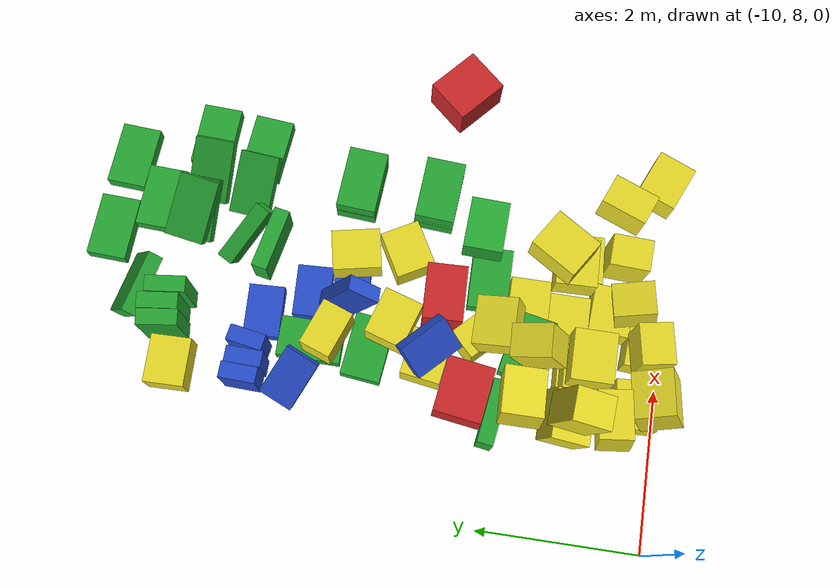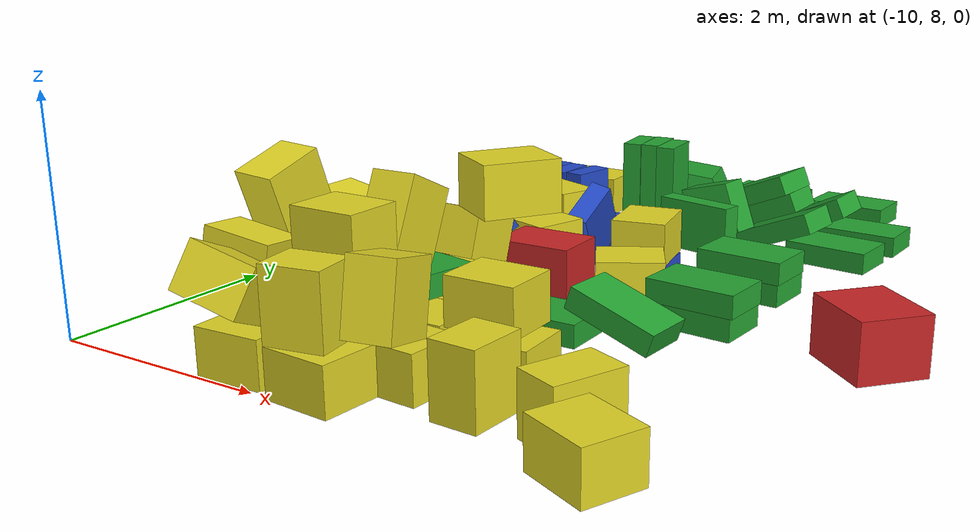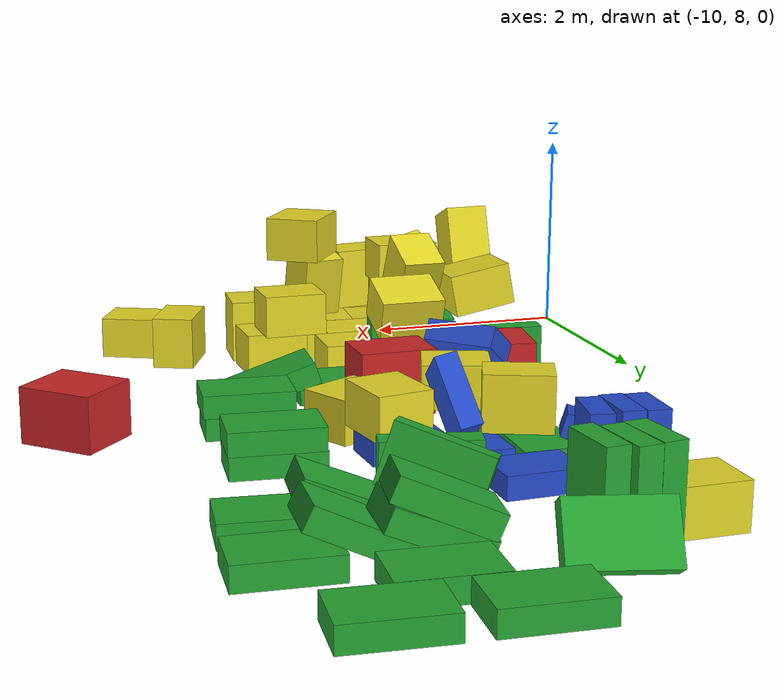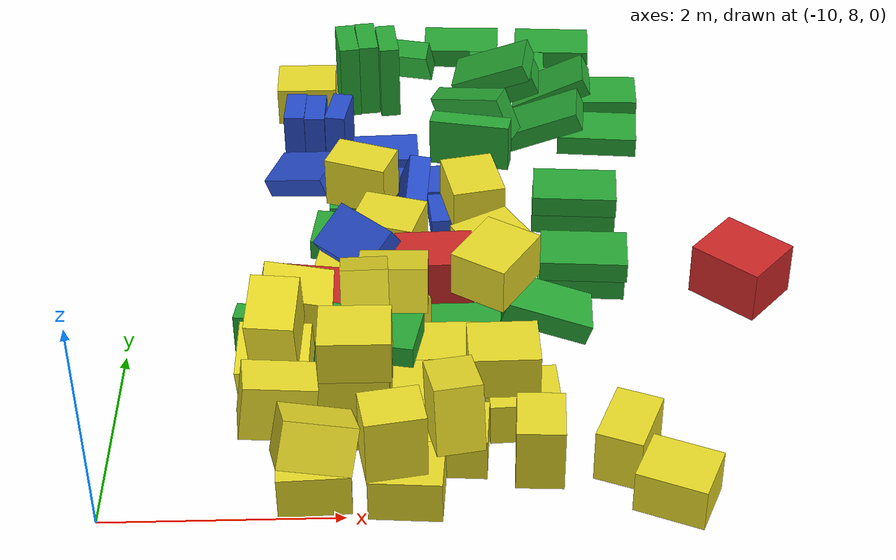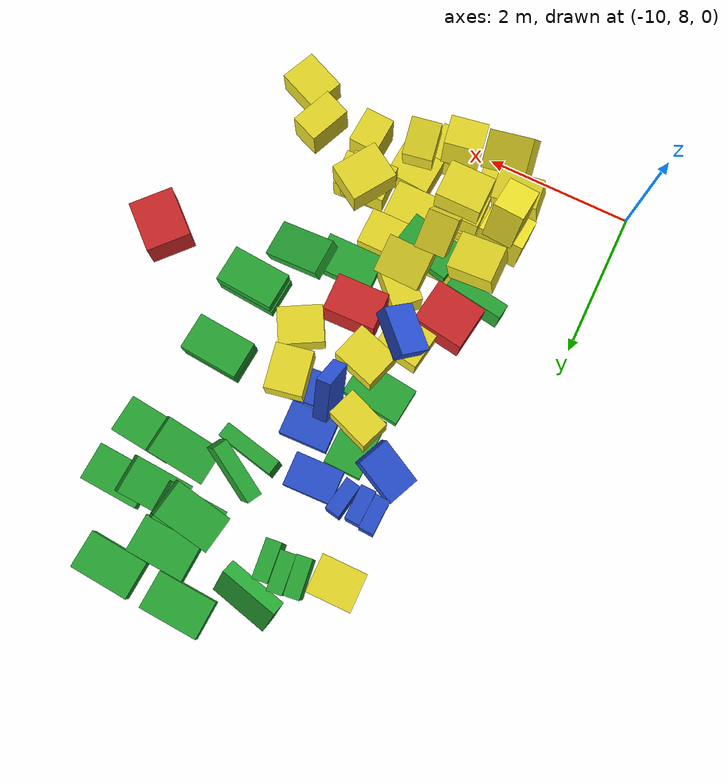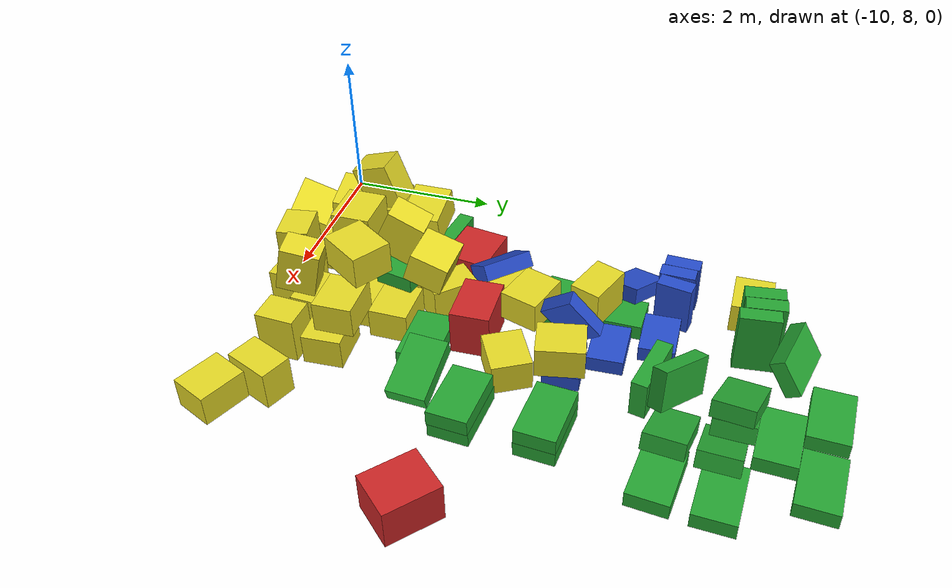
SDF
<sdf version="1.6">
 <world name="default">
  <model name="baggage_A_clone_33">
   <static>0</static>
   <link name="link">
    <collision name="collision"><geometry><box><size>0.7 0.6 0.5</size></box></geometry></collision>
    <visual name="visual">
     <geometry><box><size>0.7 0.6 0.5</size></box></geometry>
     <material>
      <script><uri>file://media/materials/scripts/gazebo.material</uri><name>Gazebo/Red</name></script>
     </material>
    </visual>
    <inertial>
     <inertia><ixx>1</ixx><ixy>0</ixy><ixz>0</ixz><iyy>1</iyy><iyz>0</iyz><izz>1</izz></inertia>
     <mass>1</mass>
    </inertial>
   </link>
   <pose>-4.44286 10.8346 0.25 -3.14159 0 2.41474</pose>
  </model>
  <model name="baggage_A_clone_34">
   <static>0</static>
   <link name="link">
    <collision name="collision"><geometry><box><size>0.7 0.6 0.5</size></box></geometry></collision>
    <visual name="visual">
     <geometry><box><size>0.7 0.6 0.5</size></box></geometry>
     <material>
      <script><uri>file://media/materials/scripts/gazebo.material</uri><name>Gazebo/Red</name></script>
     </material>
    </visual>
    <inertial>
     <inertia><ixx>1</ixx><ixy>0</ixy><ixz>0</ixz><iyy>1</iyy><iyz>0</iyz><izz>1</izz></inertia>
     <mass>1</mass>
    </inertial>
   </link>
   <pose>-7.26088 10.7505 0.300501 -1.56895 0.000115 0.029746</pose>
  </model>
  <model name="baggage_A_clone_35">
   <static>0</static>
   <link name="link">
    <collision name="collision"><geometry><box><size>0.7 0.6 0.5</size></box></geometry></collision>
    <visual name="visual">
     <geometry><box><size>0.7 0.6 0.5</size></box></geometry>
     <material>
      <script><uri>file://media/materials/scripts/gazebo.material</uri><name>Gazebo/Red</name></script>
     </material>
    </visual>
    <inertial>
     <inertia><ixx>1</ixx><ixy>0</ixy><ixz>0</ixz><iyy>1</iyy><iyz>0</iyz><izz>1</izz></inertia>
     <mass>1</mass>
    </inertial>
   </link>
   <pose>-8.3989 10.3578 0.249699 7.1e-05 -6.4e-05 -0.1457</pose>
  </model>
  <model name="baggage_B_clone_17">
   <static>0</static>
   <link name="link">
    <collision name="collision"><geometry><box><size>0.65 0.45 0.2</size></box></geometry></collision>
    <visual name="visual">
     <geometry><box><size>0.65 0.45 0.2</size></box></geometry>
     <material>
      <script><uri>file://media/materials/scripts/gazebo.material</uri><name>Gazebo/Blue</name></script>
     </material>
    </visual>
    <inertial>
     <inertia><ixx>1</ixx><ixy>0</ixy><ixz>0</ixz><iyy>1</iyy><iyz>0</iyz><izz>1</izz></inertia>
     <mass>1</mass>
    </inertial>
   </link>
   <pose>-8.62101 13.0639 0.324991 2.66408 1.57079 2.62988</pose>
  </model>
  <model name="baggage_B_clone_18">
   <static>0</static>
   <link name="link">
    <collision name="collision"><geometry><box><size>0.65 0.45 0.2</size></box></geometry></collision>
    <visual name="visual">
     <geometry><box><size>0.65 0.45 0.2</size></box></geometry>
     <material>
      <script><uri>file://media/materials/scripts/gazebo.material</uri><name>Gazebo/Blue</name></script>
     </material>
    </visual>
    <inertial>
     <inertia><ixx>1</ixx><ixy>0</ixy><ixz>0</ixz><iyy>1</iyy><iyz>0</iyz><izz>1</izz></inertia>
     <mass>1</mass>
    </inertial>
   </link>
   <pose>-8.18769 13.0469 0.325001 2.75544 1.57079 2.58238</pose>
  </model>
  <model name="baggage_B_clone_19">
   <static>0</static>
   <link name="link">
    <collision name="collision"><geometry><box><size>0.65 0.45 0.2</size></box></geometry></collision>
    <visual name="visual">
     <geometry><box><size>0.65 0.45 0.2</size></box></geometry>
     <material>
      <script><uri>file://media/materials/scripts/gazebo.material</uri><name>Gazebo/Blue</name></script>
     </material>
    </visual>
    <inertial>
     <inertia><ixx>1</ixx><ixy>0</ixy><ixz>0</ixz><iyy>1</iyy><iyz>0</iyz><izz>1</izz></inertia>
     <mass>1</mass>
    </inertial>
   </link>
   <pose>-8.42021 13.0349 0.324953 2.67903 1.57079 2.65224</pose>
  </model>
  <model name="baggage_B_clone_36">
   <static>0</static>
   <link name="link">
    <collision name="collision"><geometry><box><size>0.65 0.45 0.2</size></box></geometry></collision>
    <visual name="visual">
     <geometry><box><size>0.65 0.45 0.2</size></box></geometry>
     <material>
      <script><uri>file://media/materials/scripts/gazebo.material</uri><name>Gazebo/Blue</name></script>
     </material>
    </visual>
    <inertial>
     <inertia><ixx>1</ixx><ixy>0</ixy><ixz>0</ixz><iyy>1</iyy><iyz>0</iyz><izz>1</izz></inertia>
     <mass>1</mass>
    </inertial>
   </link>
   <pose>-8.51987 12.4946 0.217841 -3.00866 -0.293193 -0.446394</pose>
  </model>
  <model name="baggage_B_clone_37">
   <static>0</static>
   <link name="link">
    <collision name="collision"><geometry><box><size>0.65 0.45 0.2</size></box></geometry></collision>
    <visual name="visual">
     <geometry><box><size>0.65 0.45 0.2</size></box></geometry>
     <material>
      <script><uri>file://media/materials/scripts/gazebo.material</uri><name>Gazebo/Blue</name></script>
     </material>
    </visual>
    <inertial>
     <inertia><ixx>1</ixx><ixy>0</ixy><ixz>0</ixz><iyy>1</iyy><iyz>0</iyz><izz>1</izz></inertia>
     <mass>1</mass>
    </inertial>
   </link>
   <pose>-7.72951 12.9603 0.099887 -1e-06 2e-06 0.040844</pose>
  </model>
  <model name="baggage_B_clone_38">
   <static>0</static>
   <link name="link">
    <collision name="collision"><geometry><box><size>0.65 0.45 0.2</size></box></geometry></collision>
    <visual name="visual">
     <geometry><box><size>0.65 0.45 0.2</size></box></geometry>
     <material>
      <script><uri>file://media/materials/scripts/gazebo.material</uri><name>Gazebo/Blue</name></script>
     </material>
    </visual>
    <inertial>
     <inertia><ixx>1</ixx><ixy>0</ixy><ixz>0</ixz><iyy>1</iyy><iyz>0</iyz><izz>1</izz></inertia>
     <mass>1</mass>
    </inertial>
   </link>
   <pose>-7.38911 12.3948 0.099965 1e-06 -2e-06 0.041765</pose>
  </model>
  <model name="baggage_B_clone_39">
   <static>0</static>
   <link name="link">
    <collision name="collision"><geometry><box><size>0.65 0.45 0.2</size></box></geometry></collision>
    <visual name="visual">
     <geometry><box><size>0.65 0.45 0.2</size></box></geometry>
     <material>
      <script><uri>file://media/materials/scripts/gazebo.material</uri><name>Gazebo/Blue</name></script>
     </material>
    </visual>
    <inertial>
     <inertia><ixx>1</ixx><ixy>0</ixy><ixz>0</ixz><iyy>1</iyy><iyz>0</iyz><izz>1</izz></inertia>
     <mass>1</mass>
    </inertial>
   </link>
   <pose>-7.44991 11.9089 0.429279 1.23187 -0.923101 -1.29265</pose>
  </model>
  <model name="baggage_B_clone_40">
   <static>0</static>
   <link name="link">
    <collision name="collision"><geometry><box><size>0.65 0.45 0.2</size></box></geometry></collision>
    <visual name="visual">
     <geometry><box><size>0.65 0.45 0.2</size></box></geometry>
     <material>
      <script><uri>file://media/materials/scripts/gazebo.material</uri><name>Gazebo/Blue</name></script>
     </material>
    </visual>
    <inertial>
     <inertia><ixx>1</ixx><ixy>0</ixy><ixz>0</ixz><iyy>1</iyy><iyz>0</iyz><izz>1</izz></inertia>
     <mass>1</mass>
    </inertial>
   </link>
   <pose>-6.9735 11.9405 0.09986 2.4e-05 3.6e-05 0.08277</pose>
  </model>
  <model name="baggage_B_clone_43">
   <static>0</static>
   <link name="link">
    <collision name="collision"><geometry><box><size>0.65 0.45 0.2</size></box></geometry></collision>
    <visual name="visual">
     <geometry><box><size>0.65 0.45 0.2</size></box></geometry>
     <material>
      <script><uri>file://media/materials/scripts/gazebo.material</uri><name>Gazebo/Blue</name></script>
     </material>
    </visual>
    <inertial>
     <inertia><ixx>1</ixx><ixy>0</ixy><ixz>0</ixz><iyy>1</iyy><iyz>0</iyz><izz>1</izz></inertia>
     <mass>1</mass>
    </inertial>
   </link>
   <pose>-7.96244 10.8533 0.608022 -0.582982 0.000103 2.36132</pose>
  </model>
  <model name="baggage_C_clone_20">
   <static>0</static>
   <link name="link">
    <collision name="collision"><geometry><box><size>0.6 0.5 0.4</size></box></geometry></collision>
    <visual name="visual">
     <geometry><box><size>0.6 0.5 0.4</size></box></geometry>
     <material>
      <script><uri>file://media/materials/scripts/gazebo.material</uri><name>Gazebo/Yellow</name></script>
     </material>
    </visual>
    <inertial>
     <inertia><ixx>1</ixx><ixy>0</ixy><ixz>0</ixz><iyy>1</iyy><iyz>0</iyz><izz>1</izz></inertia>
     <mass>1</mass>
    </inertial>
   </link>
   <pose>-8.55814 13.9873 0.199909 -1e-06 -2e-06 0.014585</pose>
  </model>
  <model name="baggage_D_clone_17">
   <static>0</static>
   <link name="link">
    <collision name="collision"><geometry><box><size>0.8 0.5 0.2</size></box></geometry></collision>
    <visual name="visual">
     <geometry><box><size>0.8 0.5 0.2</size></box></geometry>
     <material>
      <script><uri>file://media/materials/scripts/gazebo.material</uri><name>Gazebo/Green</name></script>
     </material>
    </visual>
    <inertial>
     <inertia><ixx>1</ixx><ixy>0</ixy><ixz>0</ixz><iyy>1</iyy><iyz>0</iyz><izz>1</izz></inertia>
     <mass>1</mass>
    </inertial>
   </link>
   <pose>-5.4958 14.0008 0.099983 -1e-06 -3e-06 -0.04714</pose>
  </model>
  <model name="baggage_D_clone_18">
   <static>0</static>
   <link name="link">
    <collision name="collision"><geometry><box><size>0.8 0.5 0.2</size></box></geometry></collision>
    <visual name="visual">
     <geometry><box><size>0.8 0.5 0.2</size></box></geometry>
     <material>
      <script><uri>file://media/materials/scripts/gazebo.material</uri><name>Gazebo/Green</name></script>
     </material>
    </visual>
    <inertial>
     <inertia><ixx>1</ixx><ixy>0</ixy><ixz>0</ixz><iyy>1</iyy><iyz>0</iyz><izz>1</izz></inertia>
     <mass>1</mass>
    </inertial>
   </link>
   <pose>-5.92566 15.0098 0.099998 -2e-06 3e-06 -0.064373</pose>
  </model>
  <model name="baggage_D_clone_19">
   <static>0</static>
   <link name="link">
    <collision name="collision"><geometry><box><size>0.8 0.5 0.2</size></box></geometry></collision>
    <visual name="visual">
     <geometry><box><size>0.8 0.5 0.2</size></box></geometry>
     <material>
      <script><uri>file://media/materials/scripts/gazebo.material</uri><name>Gazebo/Green</name></script>
     </material>
    </visual>
    <inertial>
     <inertia><ixx>1</ixx><ixy>0</ixy><ixz>0</ixz><iyy>1</iyy><iyz>0</iyz><izz>1</izz></inertia>
     <mass>1</mass>
    </inertial>
   </link>
   <pose>-6.91643 15.0654 0.1 0 0 -0.04641</pose>
  </model>
  <model name="baggage_D_clone_20">
   <static>0</static>
   <link name="link">
    <collision name="collision"><geometry><box><size>0.8 0.5 0.2</size></box></geometry></collision>
    <visual name="visual">
     <geometry><box><size>0.8 0.5 0.2</size></box></geometry>
     <material>
      <script><uri>file://media/materials/scripts/gazebo.material</uri><name>Gazebo/Green</name></script>
     </material>
    </visual>
    <inertial>
     <inertia><ixx>1</ixx><ixy>0</ixy><ixz>0</ixz><iyy>1</iyy><iyz>0</iyz><izz>1</izz></inertia>
     <mass>1</mass>
    </inertial>
   </link>
   <pose>-6.43937 14.5349 0.1 0 0 -0.048464</pose>
  </model>
  <model name="baggage_D_clone_21">
   <static>0</static>
   <link name="link">
    <collision name="collision"><geometry><box><size>0.8 0.5 0.2</size></box></geometry></collision>
    <visual name="visual">
     <geometry><box><size>0.8 0.5 0.2</size></box></geometry>
     <material>
      <script><uri>file://media/materials/scripts/gazebo.material</uri><name>Gazebo/Green</name></script>
     </material>
    </visual>
    <inertial>
     <inertia><ixx>1</ixx><ixy>0</ixy><ixz>0</ixz><iyy>1</iyy><iyz>0</iyz><izz>1</izz></inertia>
     <mass>1</mass>
    </inertial>
   </link>
   <pose>-5.99798 13.9431 0.263382 -1.1e-05 -0.447948 -0.047116</pose>
  </model>
  <model name="baggage_D_clone_22">
   <static>0</static>
   <link name="link">
    <collision name="collision"><geometry><box><size>0.8 0.5 0.2</size></box></geometry></collision>
    <visual name="visual">
     <geometry><box><size>0.8 0.5 0.2</size></box></geometry>
     <material>
      <script><uri>file://media/materials/scripts/gazebo.material</uri><name>Gazebo/Green</name></script>
     </material>
    </visual>
    <inertial>
     <inertia><ixx>1</ixx><ixy>0</ixy><ixz>0</ixz><iyy>1</iyy><iyz>0</iyz><izz>1</izz></inertia>
     <mass>1</mass>
    </inertial>
   </link>
   <pose>-6.53275 14.0379 0.247739 3e-06 -0.39965 -0.047143</pose>
  </model>
  <model name="baggage_D_clone_23">
   <static>0</static>
   <link name="link">
    <collision name="collision"><geometry><box><size>0.8 0.5 0.2</size></box></geometry></collision>
    <visual name="visual">
     <geometry><box><size>0.8 0.5 0.2</size></box></geometry>
     <material>
      <script><uri>file://media/materials/scripts/gazebo.material</uri><name>Gazebo/Green</name></script>
     </material>
    </visual>
    <inertial>
     <inertia><ixx>1</ixx><ixy>0</ixy><ixz>0</ixz><iyy>1</iyy><iyz>0</iyz><izz>1</izz></inertia>
     <mass>1</mass>
    </inertial>
   </link>
   <pose>-8.12959 14.1199 0.399991 1.77545 -1.57079 -1.64137</pose>
  </model>
  <model name="baggage_D_clone_24">
   <static>0</static>
   <link name="link">
    <collision name="collision"><geometry><box><size>0.8 0.5 0.2</size></box></geometry></collision>
    <visual name="visual">
     <geometry><box><size>0.8 0.5 0.2</size></box></geometry>
     <material>
      <script><uri>file://media/materials/scripts/gazebo.material</uri><name>Gazebo/Green</name></script>
     </material>
    </visual>
    <inertial>
     <inertia><ixx>1</ixx><ixy>0</ixy><ixz>0</ixz><iyy>1</iyy><iyz>0</iyz><izz>1</izz></inertia>
     <mass>1</mass>
    </inertial>
   </link>
   <pose>-7.9277 14.1574 0.399997 1.86926 -1.57079 -1.75455</pose>
  </model>
  <model name="baggage_D_clone_25">
   <static>0</static>
   <link name="link">
    <collision name="collision"><geometry><box><size>0.8 0.5 0.2</size></box></geometry></collision>
    <visual name="visual">
     <geometry><box><size>0.8 0.5 0.2</size></box></geometry>
     <material>
      <script><uri>file://media/materials/scripts/gazebo.material</uri><name>Gazebo/Green</name></script>
     </material>
    </visual>
    <inertial>
     <inertia><ixx>1</ixx><ixy>0</ixy><ixz>0</ixz><iyy>1</iyy><iyz>0</iyz><izz>1</izz></inertia>
     <mass>1</mass>
    </inertial>
   </link>
   <pose>-7.71257 14.1074 0.399991 -2.28128 -1.57079 2.39186</pose>
  </model>
  <model name="baggage_D_clone_26">
   <static>0</static>
   <link name="link">
    <collision name="collision"><geometry><box><size>0.8 0.5 0.2</size></box></geometry></collision>
    <visual name="visual">
     <geometry><box><size>0.8 0.5 0.2</size></box></geometry>
     <material>
      <script><uri>file://media/materials/scripts/gazebo.material</uri><name>Gazebo/Green</name></script>
     </material>
    </visual>
    <inertial>
     <inertia><ixx>1</ixx><ixy>0</ixy><ixz>0</ixz><iyy>1</iyy><iyz>0</iyz><izz>1</izz></inertia>
     <mass>1</mass>
    </inertial>
   </link>
   <pose>-8.00843 12.3218 0.099823 -3.14157 -2.3e-05 -1.58044</pose>
  </model>
  <model name="baggage_D_clone_28">
   <static>0</static>
   <link name="link">
    <collision name="collision"><geometry><box><size>0.8 0.5 0.2</size></box></geometry></collision>
    <visual name="visual">
     <geometry><box><size>0.8 0.5 0.2</size></box></geometry>
     <material>
      <script><uri>file://media/materials/scripts/gazebo.material</uri><name>Gazebo/Green</name></script>
     </material>
    </visual>
    <inertial>
     <inertia><ixx>1</ixx><ixy>0</ixy><ixz>0</ixz><iyy>1</iyy><iyz>0</iyz><izz>1</izz></inertia>
     <mass>1</mass>
    </inertial>
   </link>
   <pose>-7.64994 14.5941 0.264417 1.00038 -0 2.91332</pose>
  </model>
  <model name="baggage_D_clone_29">
   <static>0</static>
   <link name="link">
    <collision name="collision"><geometry><box><size>0.8 0.5 0.2</size></box></geometry></collision>
    <visual name="visual">
     <geometry><box><size>0.8 0.5 0.2</size></box></geometry>
     <material>
      <script><uri>file://media/materials/scripts/gazebo.material</uri><name>Gazebo/Green</name></script>
     </material>
    </visual>
    <inertial>
     <inertia><ixx>1</ixx><ixy>0</ixy><ixz>0</ixz><iyy>1</iyy><iyz>0</iyz><izz>1</izz></inertia>
     <mass>1</mass>
    </inertial>
   </link>
   <pose>-5.55772 13.314 0.099907 1e-06 -1e-06 -0.095381</pose>
  </model>
  <model name="baggage_D_clone_30">
   <static>0</static>
   <link name="link">
    <collision name="collision"><geometry><box><size>0.8 0.5 0.2</size></box></geometry></collision>
    <visual name="visual">
     <geometry><box><size>0.8 0.5 0.2</size></box></geometry>
     <material>
      <script><uri>file://media/materials/scripts/gazebo.material</uri><name>Gazebo/Green</name></script>
     </material>
    </visual>
    <inertial>
     <inertia><ixx>1</ixx><ixy>0</ixy><ixz>0</ixz><iyy>1</iyy><iyz>0</iyz><izz>1</izz></inertia>
     <mass>1</mass>
    </inertial>
   </link>
   <pose>-6.11159 13.3587 0.244198 0 -0.388954 -0.095293</pose>
  </model>
  <model name="baggage_D_clone_31">
   <static>0</static>
   <link name="link">
    <collision name="collision"><geometry><box><size>0.8 0.5 0.2</size></box></geometry></collision>
    <visual name="visual">
     <geometry><box><size>0.8 0.5 0.2</size></box></geometry>
     <material>
      <script><uri>file://media/materials/scripts/gazebo.material</uri><name>Gazebo/Green</name></script>
     </material>
    </visual>
    <inertial>
     <inertia><ixx>1</ixx><ixy>0</ixy><ixz>0</ixz><iyy>1</iyy><iyz>0</iyz><izz>1</izz></inertia>
     <mass>1</mass>
    </inertial>
   </link>
   <pose>-8.00249 11.6014 0.104224 -0.001512 0.002406 -0.112418</pose>
  </model>
  <model name="baggage_D_clone_32">
   <static>0</static>
   <link name="link">
    <collision name="collision"><geometry><box><size>0.8 0.5 0.2</size></box></geometry></collision>
    <visual name="visual">
     <geometry><box><size>0.8 0.5 0.2</size></box></geometry>
     <material>
      <script><uri>file://media/materials/scripts/gazebo.material</uri><name>Gazebo/Green</name></script>
     </material>
    </visual>
    <inertial>
     <inertia><ixx>1</ixx><ixy>0</ixy><ixz>0</ixz><iyy>1</iyy><iyz>0</iyz><izz>1</izz></inertia>
     <mass>1</mass>
    </inertial>
   </link>
   <pose>-7.8003 9.6723 0.500855 -0.000531 -0.000668 -0.199382</pose>
  </model>
  <model name="baggage_D_clone_33">
   <static>0</static>
   <link name="link">
    <collision name="collision"><geometry><box><size>0.8 0.5 0.2</size></box></geometry></collision>
    <visual name="visual">
     <geometry><box><size>0.8 0.5 0.2</size></box></geometry>
     <material>
      <script><uri>file://media/materials/scripts/gazebo.material</uri><name>Gazebo/Green</name></script>
     </material>
    </visual>
    <inertial>
     <inertia><ixx>1</ixx><ixy>0</ixy><ixz>0</ixz><iyy>1</iyy><iyz>0</iyz><izz>1</izz></inertia>
     <mass>1</mass>
    </inertial>
   </link>
   <pose>-8.61481 9.97775 0.25031 1.57053 0.000145 -0.143739</pose>
  </model>
  <model name="baggage_D_clone_36">
   <static>0</static>
   <link name="link">
    <collision name="collision"><geometry><box><size>0.8 0.5 0.2</size></box></geometry></collision>
    <visual name="visual">
     <geometry><box><size>0.8 0.5 0.2</size></box></geometry>
     <material>
      <script><uri>file://media/materials/scripts/gazebo.material</uri><name>Gazebo/Green</name></script>
     </material>
    </visual>
    <inertial>
     <inertia><ixx>1</ixx><ixy>0</ixy><ixz>0</ixz><iyy>1</iyy><iyz>0</iyz><izz>1</izz></inertia>
     <mass>1</mass>
    </inertial>
   </link>
   <pose>-6.87032 12.9999 0.249971 1.5708 -0 -0.20135</pose>
  </model>
  <model name="baggage_D_clone_37">
   <static>0</static>
   <link name="link">
    <collision name="collision"><geometry><box><size>0.8 0.5 0.2</size></box></geometry></collision>
    <visual name="visual">
     <geometry><box><size>0.8 0.5 0.2</size></box></geometry>
     <material>
      <script><uri>file://media/materials/scripts/gazebo.material</uri><name>Gazebo/Green</name></script>
     </material>
    </visual>
    <inertial>
     <inertia><ixx>1</ixx><ixy>0</ixy><ixz>0</ixz><iyy>1</iyy><iyz>0</iyz><izz>1</izz></inertia>
     <mass>1</mass>
    </inertial>
   </link>
   <pose>-6.81119 13.3202 0.365895 1.73639 -0.288166 -0.544003</pose>
  </model>
  <model name="baggage_D_clone_39">
   <static>0</static>
   <link name="link">
    <collision name="collision"><geometry><box><size>0.8 0.5 0.2</size></box></geometry></collision>
    <visual name="visual">
     <geometry><box><size>0.8 0.5 0.2</size></box></geometry>
     <material>
      <script><uri>file://media/materials/scripts/gazebo.material</uri><name>Gazebo/Green</name></script>
     </material>
    </visual>
    <inertial>
     <inertia><ixx>1</ixx><ixy>0</ixy><ixz>0</ixz><iyy>1</iyy><iyz>0</iyz><izz>1</izz></inertia>
     <mass>1</mass>
    </inertial>
   </link>
   <pose>-6.60436 14.044 0.434496 0.051063 -0.396552 -0.178694</pose>
  </model>
  <model name="baggage_D_clone_40">
   <static>0</static>
   <link name="link">
    <collision name="collision"><geometry><box><size>0.8 0.5 0.2</size></box></geometry></collision>
    <visual name="visual">
     <geometry><box><size>0.8 0.5 0.2</size></box></geometry>
     <material>
      <script><uri>file://media/materials/scripts/gazebo.material</uri><name>Gazebo/Green</name></script>
     </material>
    </visual>
    <inertial>
     <inertia><ixx>1</ixx><ixy>0</ixy><ixz>0</ixz><iyy>1</iyy><iyz>0</iyz><izz>1</izz></inertia>
     <mass>1</mass>
    </inertial>
   </link>
   <pose>-6.89671 10.2039 0.1 0 -0 0.006587</pose>
  </model>
  <model name="baggage_D_clone_41">
   <static>0</static>
   <link name="link">
    <collision name="collision"><geometry><box><size>0.8 0.5 0.2</size></box></geometry></collision>
    <visual name="visual">
     <geometry><box><size>0.8 0.5 0.2</size></box></geometry>
     <material>
      <script><uri>file://media/materials/scripts/gazebo.material</uri><name>Gazebo/Green</name></script>
     </material>
    </visual>
    <inertial>
     <inertia><ixx>1</ixx><ixy>0</ixy><ixz>0</ixz><iyy>1</iyy><iyz>0</iyz><izz>1</izz></inertia>
     <mass>1</mass>
    </inertial>
   </link>
   <pose>-6.26006 10.34 0.226034 -0.018799 0.322322 -0.053474</pose>
  </model>
  <model name="baggage_D_clone_42">
   <static>0</static>
   <link name="link">
    <collision name="collision"><geometry><box><size>0.8 0.5 0.2</size></box></geometry></collision>
    <visual name="visual">
     <geometry><box><size>0.8 0.5 0.2</size></box></geometry>
     <material>
      <script><uri>file://media/materials/scripts/gazebo.material</uri><name>Gazebo/Green</name></script>
     </material>
    </visual>
    <inertial>
     <inertia><ixx>1</ixx><ixy>0</ixy><ixz>0</ixz><iyy>1</iyy><iyz>0</iyz><izz>1</izz></inertia>
     <mass>1</mass>
    </inertial>
   </link>
   <pose>-5.90028 11.9926 0.1 0 0 -0.073546</pose>
  </model>
  <model name="baggage_D_clone_43">
   <static>0</static>
   <link name="link">
    <collision name="collision"><geometry><box><size>0.8 0.5 0.2</size></box></geometry></collision>
    <visual name="visual">
     <geometry><box><size>0.8 0.5 0.2</size></box></geometry>
     <material>
      <script><uri>file://media/materials/scripts/gazebo.material</uri><name>Gazebo/Green</name></script>
     </material>
    </visual>
    <inertial>
     <inertia><ixx>1</ixx><ixy>0</ixy><ixz>0</ixz><iyy>1</iyy><iyz>0</iyz><izz>1</izz></inertia>
     <mass>1</mass>
    </inertial>
   </link>
   <pose>-5.89292 11.996 0.300003 -1e-05 -0 -0.073315</pose>
  </model>
  <model name="baggage_D_clone_44">
   <static>0</static>
   <link name="link">
    <collision name="collision"><geometry><box><size>0.8 0.5 0.2</size></box></geometry></collision>
    <visual name="visual">
     <geometry><box><size>0.8 0.5 0.2</size></box></geometry>
     <material>
      <script><uri>file://media/materials/scripts/gazebo.material</uri><name>Gazebo/Green</name></script>
     </material>
    </visual>
    <inertial>
     <inertia><ixx>1</ixx><ixy>0</ixy><ixz>0</ixz><iyy>1</iyy><iyz>0</iyz><izz>1</izz></inertia>
     <mass>1</mass>
    </inertial>
   </link>
   <pose>-5.90252 10.992 0.1 0 0 -0.073151</pose>
  </model>
  <model name="baggage_D_clone_45">
   <static>0</static>
   <link name="link">
    <collision name="collision"><geometry><box><size>0.8 0.5 0.2</size></box></geometry></collision>
    <visual name="visual">
     <geometry><box><size>0.8 0.5 0.2</size></box></geometry>
     <material>
      <script><uri>file://media/materials/scripts/gazebo.material</uri><name>Gazebo/Green</name></script>
     </material>
    </visual>
    <inertial>
     <inertia><ixx>1</ixx><ixy>0</ixy><ixz>0</ixz><iyy>1</iyy><iyz>0</iyz><izz>1</izz></inertia>
     <mass>1</mass>
    </inertial>
   </link>
   <pose>-5.88286 10.9888 0.300013 3e-06 5.6e-05 -0.070123</pose>
  </model>
  <model name="baggage_C_clone_50">
   <static>0</static>
   <link name="link">
    <collision name="collision"><geometry><box><size>0.6 0.5 0.4</size></box></geometry></collision>
    <visual name="visual">
     <geometry><box><size>0.6 0.5 0.4</size></box></geometry>
     <material>
      <script><uri>file://media/materials/scripts/gazebo.material</uri><name>Gazebo/Yellow</name></script>
     </material>
    </visual>
    <inertial>
     <inertia><ixx>1</ixx><ixy>0</ixy><ixz>0</ixz><iyy>1</iyy><iyz>0</iyz><izz>1</izz></inertia>
     <mass>1</mass>
    </inertial>
   </link>
   <pose>-6.88347 11.9092 0.399947 3.14137 0.000187 -1.37247</pose>
  </model>
  <model name="baggage_C_clone_53">
   <static>0</static>
   <link name="link">
    <collision name="collision"><geometry><box><size>0.6 0.5 0.4</size></box></geometry></collision>
    <visual name="visual">
     <geometry><box><size>0.6 0.5 0.4</size></box></geometry>
     <material>
      <script><uri>file://media/materials/scripts/gazebo.material</uri><name>Gazebo/Yellow</name></script>
     </material>
    </visual>
    <inertial>
     <inertia><ixx>1</ixx><ixy>0</ixy><ixz>0</ixz><iyy>1</iyy><iyz>0</iyz><izz>1</izz></inertia>
     <mass>1</mass>
    </inertial>
   </link>
   <pose>-7.65019 10.2534 0.250004 1.57086 1e-06 -0.788411</pose>
  </model>
  <model name="baggage_C_clone_55">
   <static>0</static>
   <link name="link">
    <collision name="collision"><geometry><box><size>0.6 0.5 0.4</size></box></geometry></collision>
    <visual name="visual">
     <geometry><box><size>0.6 0.5 0.4</size></box></geometry>
     <material>
      <script><uri>file://media/materials/scripts/gazebo.material</uri><name>Gazebo/Yellow</name></script>
     </material>
    </visual>
    <inertial>
     <inertia><ixx>1</ixx><ixy>0</ixy><ixz>0</ixz><iyy>1</iyy><iyz>0</iyz><izz>1</izz></inertia>
     <mass>1</mass>
    </inertial>
   </link>
   <pose>-8.44891 9.6981 0.854828 0.007324 0.185143 0.005267</pose>
  </model>
  <model name="baggage_C_clone_56">
   <static>0</static>
   <link name="link">
    <collision name="collision"><geometry><box><size>0.6 0.5 0.4</size></box></geometry></collision>
    <visual name="visual">
     <geometry><box><size>0.6 0.5 0.4</size></box></geometry>
     <material>
      <script><uri>file://media/materials/scripts/gazebo.material</uri><name>Gazebo/Yellow</name></script>
     </material>
    </visual>
    <inertial>
     <inertia><ixx>1</ixx><ixy>0</ixy><ixz>0</ixz><iyy>1</iyy><iyz>0</iyz><izz>1</izz></inertia>
     <mass>1</mass>
    </inertial>
   </link>
   <pose>-7.51151 8.205 0.199999 -0 3e-06 -0.071903</pose>
  </model>
  <model name="baggage_C_clone_57">
   <static>0</static>
   <link name="link">
    <collision name="collision"><geometry><box><size>0.6 0.5 0.4</size></box></geometry></collision>
    <visual name="visual">
     <geometry><box><size>0.6 0.5 0.4</size></box></geometry>
     <material>
      <script><uri>file://media/materials/scripts/gazebo.material</uri><name>Gazebo/Yellow</name></script>
     </material>
    </visual>
    <inertial>
     <inertia><ixx>1</ixx><ixy>0</ixy><ixz>0</ixz><iyy>1</iyy><iyz>0</iyz><izz>1</izz></inertia>
     <mass>1</mass>
    </inertial>
   </link>
   <pose>-7.62032 10.068 0.769351 -0.312842 0.007716 -0.01746</pose>
  </model>
  <model name="baggage_C_clone_58">
   <static>0</static>
   <link name="link">
    <collision name="collision"><geometry><box><size>0.6 0.5 0.4</size></box></geometry></collision>
    <visual name="visual">
     <geometry><box><size>0.6 0.5 0.4</size></box></geometry>
     <material>
      <script><uri>file://media/materials/scripts/gazebo.material</uri><name>Gazebo/Yellow</name></script>
     </material>
    </visual>
    <inertial>
     <inertia><ixx>1</ixx><ixy>0</ixy><ixz>0</ixz><iyy>1</iyy><iyz>0</iyz><izz>1</izz></inertia>
     <mass>1</mass>
    </inertial>
   </link>
   <pose>-8.23143 8.12345 0.748696 -0.432775 0.237544 0.080112</pose>
  </model>
  <model name="baggage_C_clone_58">
   <static>0</static>
   <link name="link">
    <collision name="collision"><geometry><box><size>0.6 0.5 0.4</size></box></geometry></collision>
    <visual name="visual">
     <geometry><box><size>0.6 0.5 0.4</size></box></geometry>
     <material>
      <script><uri>file://media/materials/scripts/gazebo.material</uri><name>Gazebo/Yellow</name></script>
     </material>
    </visual>
    <inertial>
     <inertia><ixx>1</ixx><ixy>0</ixy><ixz>0</ixz><iyy>1</iyy><iyz>0</iyz><izz>1</izz></inertia>
     <mass>1</mass>
    </inertial>
   </link>
   <pose>-8.23143 8.12345 0.748696 -0.432775 0.237544 0.080112</pose>
  </model>
  <model name="baggage_C_clone_59">
   <static>0</static>
   <link name="link">
    <collision name="collision"><geometry><box><size>0.6 0.5 0.4</size></box></geometry></collision>
    <visual name="visual">
     <geometry><box><size>0.6 0.5 0.4</size></box></geometry>
     <material>
      <script><uri>file://media/materials/scripts/gazebo.material</uri><name>Gazebo/Yellow</name></script>
     </material>
    </visual>
    <inertial>
     <inertia><ixx>1</ixx><ixy>0</ixy><ixz>0</ixz><iyy>1</iyy><iyz>0</iyz><izz>1</izz></inertia>
     <mass>1</mass>
    </inertial>
   </link>
   <pose>-7.92856 9.62086 0.199921 -6e-06 -5.4e-05 -0.009155</pose>
  </model>
  <model name="baggage_C_clone_62">
   <static>0</static>
   <link name="link">
    <collision name="collision"><geometry><box><size>0.6 0.5 0.4</size></box></geometry></collision>
    <visual name="visual">
     <geometry><box><size>0.6 0.5 0.4</size></box></geometry>
     <material>
      <script><uri>file://media/materials/scripts/gazebo.material</uri><name>Gazebo/Yellow</name></script>
     </material>
    </visual>
    <inertial>
     <inertia><ixx>1</ixx><ixy>0</ixy><ixz>0</ixz><iyy>1</iyy><iyz>0</iyz><izz>1</izz></inertia>
     <mass>1</mass>
    </inertial>
   </link>
   <pose>-8.54705 8.59814 0.734406 1.48862 0.145493 0.093909</pose>
  </model>
  <model name="baggage_C_clone_65">
   <static>0</static>
   <link name="link">
    <collision name="collision"><geometry><box><size>0.6 0.5 0.4</size></box></geometry></collision>
    <visual name="visual">
     <geometry><box><size>0.6 0.5 0.4</size></box></geometry>
     <material>
      <script><uri>file://media/materials/scripts/gazebo.material</uri><name>Gazebo/Yellow</name></script>
     </material>
    </visual>
    <inertial>
     <inertia><ixx>1</ixx><ixy>0</ixy><ixz>0</ixz><iyy>1</iyy><iyz>0</iyz><izz>1</izz></inertia>
     <mass>1</mass>
    </inertial>
   </link>
   <pose>-6.72435 11.287 0.199999 2e-06 -1e-06 0.510199</pose>
  </model>
  <model name="baggage_C_clone_66">
   <static>0</static>
   <link name="link">
    <collision name="collision"><geometry><box><size>0.6 0.5 0.4</size></box></geometry></collision>
    <visual name="visual">
     <geometry><box><size>0.6 0.5 0.4</size></box></geometry>
     <material>
      <script><uri>file://media/materials/scripts/gazebo.material</uri><name>Gazebo/Yellow</name></script>
     </material>
    </visual>
    <inertial>
     <inertia><ixx>1</ixx><ixy>0</ixy><ixz>0</ixz><iyy>1</iyy><iyz>0</iyz><izz>1</izz></inertia>
     <mass>1</mass>
    </inertial>
   </link>
   <pose>-7.85126 9.58139 0.978541 -1.5704 1.13293 -1.53392</pose>
  </model>
  <model name="baggage_C_clone_67">
   <static>0</static>
   <link name="link">
    <collision name="collision"><geometry><box><size>0.6 0.5 0.4</size></box></geometry></collision>
    <visual name="visual">
     <geometry><box><size>0.6 0.5 0.4</size></box></geometry>
     <material>
      <script><uri>file://media/materials/scripts/gazebo.material</uri><name>Gazebo/Yellow</name></script>
     </material>
    </visual>
    <inertial>
     <inertia><ixx>1</ixx><ixy>0</ixy><ixz>0</ixz><iyy>1</iyy><iyz>0</iyz><izz>1</izz></inertia>
     <mass>1</mass>
    </inertial>
   </link>
   <pose>-8.59693 9.14526 0.682612 0.33906 0.017672 -0.047744</pose>
  </model>
  <model name="baggage_C_clone_68">
   <static>0</static>
   <link name="link">
    <collision name="collision"><geometry><box><size>0.6 0.5 0.4</size></box></geometry></collision>
    <visual name="visual">
     <geometry><box><size>0.6 0.5 0.4</size></box></geometry>
     <material>
      <script><uri>file://media/materials/scripts/gazebo.material</uri><name>Gazebo/Yellow</name></script>
     </material>
    </visual>
    <inertial>
     <inertia><ixx>1</ixx><ixy>0</ixy><ixz>0</ixz><iyy>1</iyy><iyz>0</iyz><izz>1</izz></inertia>
     <mass>1</mass>
    </inertial>
   </link>
   <pose>-7.67488 11.3237 0.400469 -3.14074 0.000459 -0.304725</pose>
  </model>
  <model name="baggage_C_clone_69">
   <static>0</static>
   <link name="link">
    <collision name="collision"><geometry><box><size>0.6 0.5 0.4</size></box></geometry></collision>
    <visual name="visual">
     <geometry><box><size>0.6 0.5 0.4</size></box></geometry>
     <material>
      <script><uri>file://media/materials/scripts/gazebo.material</uri><name>Gazebo/Yellow</name></script>
     </material>
    </visual>
    <inertial>
     <inertia><ixx>1</ixx><ixy>0</ixy><ixz>0</ixz><iyy>1</iyy><iyz>0</iyz><izz>1</izz></inertia>
     <mass>1</mass>
    </inertial>
   </link>
   <pose>-6.76293 9.47838 1.40053 0.001255 0.001494 0.998079</pose>
  </model>
  <model name="baggage_C_clone_70">
   <static>0</static>
   <link name="link">
    <collision name="collision"><geometry><box><size>0.6 0.5 0.4</size></box></geometry></collision>
    <visual name="visual">
     <geometry><box><size>0.6 0.5 0.4</size></box></geometry>
     <material>
      <script><uri>file://media/materials/scripts/gazebo.material</uri><name>Gazebo/Yellow</name></script>
     </material>
    </visual>
    <inertial>
     <inertia><ixx>1</ixx><ixy>0</ixy><ixz>0</ixz><iyy>1</iyy><iyz>0</iyz><izz>1</izz></inertia>
     <mass>1</mass>
    </inertial>
   </link>
   <pose>-5.69207 8.59756 0.25 1.5708 -0 1.18352</pose>
  </model>
  <model name="baggage_C_clone_70">
   <static>0</static>
   <link name="link">
    <collision name="collision"><geometry><box><size>0.6 0.5 0.4</size></box></geometry></collision>
    <visual name="visual">
     <geometry><box><size>0.6 0.5 0.4</size></box></geometry>
     <material>
      <script><uri>file://media/materials/scripts/gazebo.material</uri><name>Gazebo/Yellow</name></script>
     </material>
    </visual>
    <inertial>
     <inertia><ixx>1</ixx><ixy>0</ixy><ixz>0</ixz><iyy>1</iyy><iyz>0</iyz><izz>1</izz></inertia>
     <mass>1</mass>
    </inertial>
   </link>
   <pose>-5.69207 8.59756 0.25 1.5708 -0 1.18352</pose>
  </model>
  <model name="baggage_C_clone_71">
   <static>0</static>
   <link name="link">
    <collision name="collision"><geometry><box><size>0.6 0.5 0.4</size></box></geometry></collision>
    <visual name="visual">
     <geometry><box><size>0.6 0.5 0.4</size></box></geometry>
     <material>
      <script><uri>file://media/materials/scripts/gazebo.material</uri><name>Gazebo/Yellow</name></script>
     </material>
    </visual>
    <inertial>
     <inertia><ixx>1</ixx><ixy>0</ixy><ixz>0</ixz><iyy>1</iyy><iyz>0</iyz><izz>1</izz></inertia>
     <mass>1</mass>
    </inertial>
   </link>
   <pose>-6.70129 9.21144 0.600307 0.00057 0.001751 0.020546</pose>
  </model>
  <model name="baggage_C_clone_72">
   <static>0</static>
   <link name="link">
    <collision name="collision"><geometry><box><size>0.6 0.5 0.4</size></box></geometry></collision>
    <visual name="visual">
     <geometry><box><size>0.6 0.5 0.4</size></box></geometry>
     <material>
      <script><uri>file://media/materials/scripts/gazebo.material</uri><name>Gazebo/Yellow</name></script>
     </material>
    </visual>
    <inertial>
     <inertia><ixx>1</ixx><ixy>0</ixy><ixz>0</ixz><iyy>1</iyy><iyz>0</iyz><izz>1</izz></inertia>
     <mass>1</mass>
    </inertial>
   </link>
   <pose>-5.32927 8.14089 0.199999 -3.14159 1e-06 2.73168</pose>
  </model>
  <model name="baggage_C_clone_73">
   <static>0</static>
   <link name="link">
    <collision name="collision"><geometry><box><size>0.6 0.5 0.4</size></box></geometry></collision>
    <visual name="visual">
     <geometry><box><size>0.6 0.5 0.4</size></box></geometry>
     <material>
      <script><uri>file://media/materials/scripts/gazebo.material</uri><name>Gazebo/Yellow</name></script>
     </material>
    </visual>
    <inertial>
     <inertia><ixx>1</ixx><ixy>0</ixy><ixz>0</ixz><iyy>1</iyy><iyz>0</iyz><izz>1</izz></inertia>
     <mass>1</mass>
    </inertial>
   </link>
   <pose>-6.42181 8.53768 0.299999 2.6995 1.57079 2.64818</pose>
  </model>
  <model name="baggage_C_clone_73">
   <static>0</static>
   <link name="link">
    <collision name="collision"><geometry><box><size>0.6 0.5 0.4</size></box></geometry></collision>
    <visual name="visual">
     <geometry><box><size>0.6 0.5 0.4</size></box></geometry>
     <material>
      <script><uri>file://media/materials/scripts/gazebo.material</uri><name>Gazebo/Yellow</name></script>
     </material>
    </visual>
    <inertial>
     <inertia><ixx>1</ixx><ixy>0</ixy><ixz>0</ixz><iyy>1</iyy><iyz>0</iyz><izz>1</izz></inertia>
     <mass>1</mass>
    </inertial>
   </link>
   <pose>-6.42181 8.53768 0.299999 2.6995 1.57079 2.64818</pose>
  </model>
  <model name="baggage_C_clone_74">
   <static>0</static>
   <link name="link">
    <collision name="collision"><geometry><box><size>0.6 0.5 0.4</size></box></geometry></collision>
    <visual name="visual">
     <geometry><box><size>0.6 0.5 0.4</size></box></geometry>
     <material>
      <script><uri>file://media/materials/scripts/gazebo.material</uri><name>Gazebo/Yellow</name></script>
     </material>
    </visual>
    <inertial>
     <inertia><ixx>1</ixx><ixy>0</ixy><ixz>0</ixz><iyy>1</iyy><iyz>0</iyz><izz>1</izz></inertia>
     <mass>1</mass>
    </inertial>
   </link>
   <pose>-6.53346 9.09284 0.199652 3.8e-05 6e-05 0.053049</pose>
  </model>
  <model name="baggage_C_clone_75">
   <static>0</static>
   <link name="link">
    <collision name="collision"><geometry><box><size>0.6 0.5 0.4</size></box></geometry></collision>
    <visual name="visual">
     <geometry><box><size>0.6 0.5 0.4</size></box></geometry>
     <material>
      <script><uri>file://media/materials/scripts/gazebo.material</uri><name>Gazebo/Yellow</name></script>
     </material>
    </visual>
    <inertial>
     <inertia><ixx>1</ixx><ixy>0</ixy><ixz>0</ixz><iyy>1</iyy><iyz>0</iyz><izz>1</izz></inertia>
     <mass>1</mass>
    </inertial>
   </link>
   <pose>-8.263 8.27591 0.199886 -6e-06 2e-05 0.049075</pose>
  </model>
  <model name="baggage_C_clone_77">
   <static>0</static>
   <link name="link">
    <collision name="collision"><geometry><box><size>0.6 0.5 0.4</size></box></geometry></collision>
    <visual name="visual">
     <geometry><box><size>0.6 0.5 0.4</size></box></geometry>
     <material>
      <script><uri>file://media/materials/scripts/gazebo.material</uri><name>Gazebo/Yellow</name></script>
     </material>
    </visual>
    <inertial>
     <inertia><ixx>1</ixx><ixy>0</ixy><ixz>0</ixz><iyy>1</iyy><iyz>0</iyz><izz>1</izz></inertia>
     <mass>1</mass>
    </inertial>
   </link>
   <pose>-7.61996 8.22313 0.69999 -1.61536 1.57079 -3.01695</pose>
  </model>
  <model name="baggage_C_clone_79">
   <static>0</static>
   <link name="link">
    <collision name="collision"><geometry><box><size>0.6 0.5 0.4</size></box></geometry></collision>
    <visual name="visual">
     <geometry><box><size>0.6 0.5 0.4</size></box></geometry>
     <material>
      <script><uri>file://media/materials/scripts/gazebo.material</uri><name>Gazebo/Yellow</name></script>
     </material>
    </visual>
    <inertial>
     <inertia><ixx>1</ixx><ixy>0</ixy><ixz>0</ixz><iyy>1</iyy><iyz>0</iyz><izz>1</izz></inertia>
     <mass>1</mass>
    </inertial>
   </link>
   <pose>-7.12601 8.49006 0.745662 1.57064 -1.36133 1.74396</pose>
  </model>
  <model name="baggage_C_clone_81">
   <static>0</static>
   <link name="link">
    <collision name="collision"><geometry><box><size>0.6 0.5 0.4</size></box></geometry></collision>
    <visual name="visual">
     <geometry><box><size>0.6 0.5 0.4</size></box></geometry>
     <material>
      <script><uri>file://media/materials/scripts/gazebo.material</uri><name>Gazebo/Yellow</name></script>
     </material>
    </visual>
    <inertial>
     <inertia><ixx>1</ixx><ixy>0</ixy><ixz>0</ixz><iyy>1</iyy><iyz>0</iyz><izz>1</izz></inertia>
     <mass>1</mass>
    </inertial>
   </link>
   <pose>-7.19167 9.70111 0.200099 -2e-06 0.000456 -0.002589</pose>
  </model>
  <model name="baggage_C_clone_82">
   <static>0</static>
   <link name="link">
    <collision name="collision"><geometry><box><size>0.6 0.5 0.4</size></box></geometry></collision>
    <visual name="visual">
     <geometry><box><size>0.6 0.5 0.4</size></box></geometry>
     <material>
      <script><uri>file://media/materials/scripts/gazebo.material</uri><name>Gazebo/Yellow</name></script>
     </material>
    </visual>
    <inertial>
     <inertia><ixx>1</ixx><ixy>0</ixy><ixz>0</ixz><iyy>1</iyy><iyz>0</iyz><izz>1</izz></inertia>
     <mass>1</mass>
    </inertial>
   </link>
   <pose>-7.14102 8.68115 0.197977 0.000256 -0.000319 -0.07058</pose>
  </model>
  <model name="baggage_C_clone_83">
   <static>0</static>
   <link name="link">
    <collision name="collision"><geometry><box><size>0.6 0.5 0.4</size></box></geometry></collision>
    <visual name="visual">
     <geometry><box><size>0.6 0.5 0.4</size></box></geometry>
     <material>
      <script><uri>file://media/materials/scripts/gazebo.material</uri><name>Gazebo/Yellow</name></script>
     </material>
    </visual>
    <inertial>
     <inertia><ixx>1</ixx><ixy>0</ixy><ixz>0</ixz><iyy>1</iyy><iyz>0</iyz><izz>1</izz></inertia>
     <mass>1</mass>
    </inertial>
   </link>
   <pose>-7.33123 9.20134 0.200031 -3e-06 1.2e-05 -0.003418</pose>
  </model>
  <model name="baggage_C_clone_85">
   <static>0</static>
   <link name="link">
    <collision name="collision"><geometry><box><size>0.6 0.5 0.4</size></box></geometry></collision>
    <visual name="visual">
     <geometry><box><size>0.6 0.5 0.4</size></box></geometry>
     <material>
      <script><uri>file://media/materials/scripts/gazebo.material</uri><name>Gazebo/Yellow</name></script>
     </material>
    </visual>
    <inertial>
     <inertia><ixx>1</ixx><ixy>0</ixy><ixz>0</ixz><iyy>1</iyy><iyz>0</iyz><izz>1</izz></inertia>
     <mass>1</mass>
    </inertial>
   </link>
   <pose>-8.56608 9.0488 1.17933 1.48734 -1.23178 -1.56871</pose>
  </model>
  <model name="baggage_C_clone_86">
   <static>0</static>
   <link name="link">
    <collision name="collision"><geometry><box><size>0.6 0.5 0.4</size></box></geometry></collision>
    <visual name="visual">
     <geometry><box><size>0.6 0.5 0.4</size></box></geometry>
     <material>
      <script><uri>file://media/materials/scripts/gazebo.material</uri><name>Gazebo/Yellow</name></script>
     </material>
    </visual>
    <inertial>
     <inertia><ixx>1</ixx><ixy>0</ixy><ixz>0</ixz><iyy>1</iyy><iyz>0</iyz><izz>1</izz></inertia>
     <mass>1</mass>
    </inertial>
   </link>
   <pose>-7.98567 9.02599 0.199964 -5e-06 3e-06 0.0241</pose>
  </model>
  <model name="baggage_C_clone_87">
   <static>0</static>
   <link name="link">
    <collision name="collision"><geometry><box><size>0.6 0.5 0.4</size></box></geometry></collision>
    <visual name="visual">
     <geometry><box><size>0.6 0.5 0.4</size></box></geometry>
     <material>
      <script><uri>file://media/materials/scripts/gazebo.material</uri><name>Gazebo/Yellow</name></script>
     </material>
    </visual>
    <inertial>
     <inertia><ixx>1</ixx><ixy>0</ixy><ixz>0</ixz><iyy>1</iyy><iyz>0</iyz><izz>1</izz></inertia>
     <mass>1</mass>
    </inertial>
   </link>
   <pose>-7.9215 8.96831 1.00004 1.4e-05 7.1e-05 -0.001386</pose>
  </model>
  <model name="baggage_C_clone_88">
   <static>0</static>
   <link name="link">
    <collision name="collision"><geometry><box><size>0.6 0.5 0.4</size></box></geometry></collision>
    <visual name="visual">
     <geometry><box><size>0.6 0.5 0.4</size></box></geometry>
     <material>
      <script><uri>file://media/materials/scripts/gazebo.material</uri><name>Gazebo/Yellow</name></script>
     </material>
    </visual>
    <inertial>
     <inertia><ixx>1</ixx><ixy>0</ixy><ixz>0</ixz><iyy>1</iyy><iyz>0</iyz><izz>1</izz></inertia>
     <mass>1</mass>
    </inertial>
   </link>
   <pose>-7.95011 8.99816 0.599949 -5e-06 3e-06 0.01409</pose>
  </model>
  <model name="baggage_C_clone_98">
   <static>0</static>
   <link name="link">
    <collision name="collision"><geometry><box><size>0.6 0.5 0.4</size></box></geometry></collision>
    <visual name="visual">
     <geometry><box><size>0.6 0.5 0.4</size></box></geometry>
     <material>
      <script><uri>file://media/materials/scripts/gazebo.material</uri><name>Gazebo/Yellow</name></script>
     </material>
    </visual>
    <inertial>
     <inertia><ixx>1</ixx><ixy>0</ixy><ixz>0</ixz><iyy>1</iyy><iyz>0</iyz><izz>1</izz></inertia>
     <mass>1</mass>
    </inertial>
   </link>
   <pose>-8.0333 10.8681 0.20008 0.00032 -0 -0.154824</pose>
  </model>
  <model name="baggage_C_clone_100">
   <static>0</static>
   <link name="link">
    <collision name="collision"><geometry><box><size>0.6 0.5 0.4</size></box></geometry></collision>
    <visual name="visual">
     <geometry><box><size>0.6 0.5 0.4</size></box></geometry>
     <material>
      <script><uri>file://media/materials/scripts/gazebo.material</uri><name>Gazebo/Yellow</name></script>
     </material>
    </visual>
    <inertial>
     <inertia><ixx>1</ixx><ixy>0</ixy><ixz>0</ixz><iyy>1</iyy><iyz>0</iyz><izz>1</izz></inertia>
     <mass>1</mass>
    </inertial>
   </link>
   <pose>-7.94148 12.1049 0.450105 -1.57087 -0.00022 -0.353819</pose>
  </model>
 </world>
</sdf>
